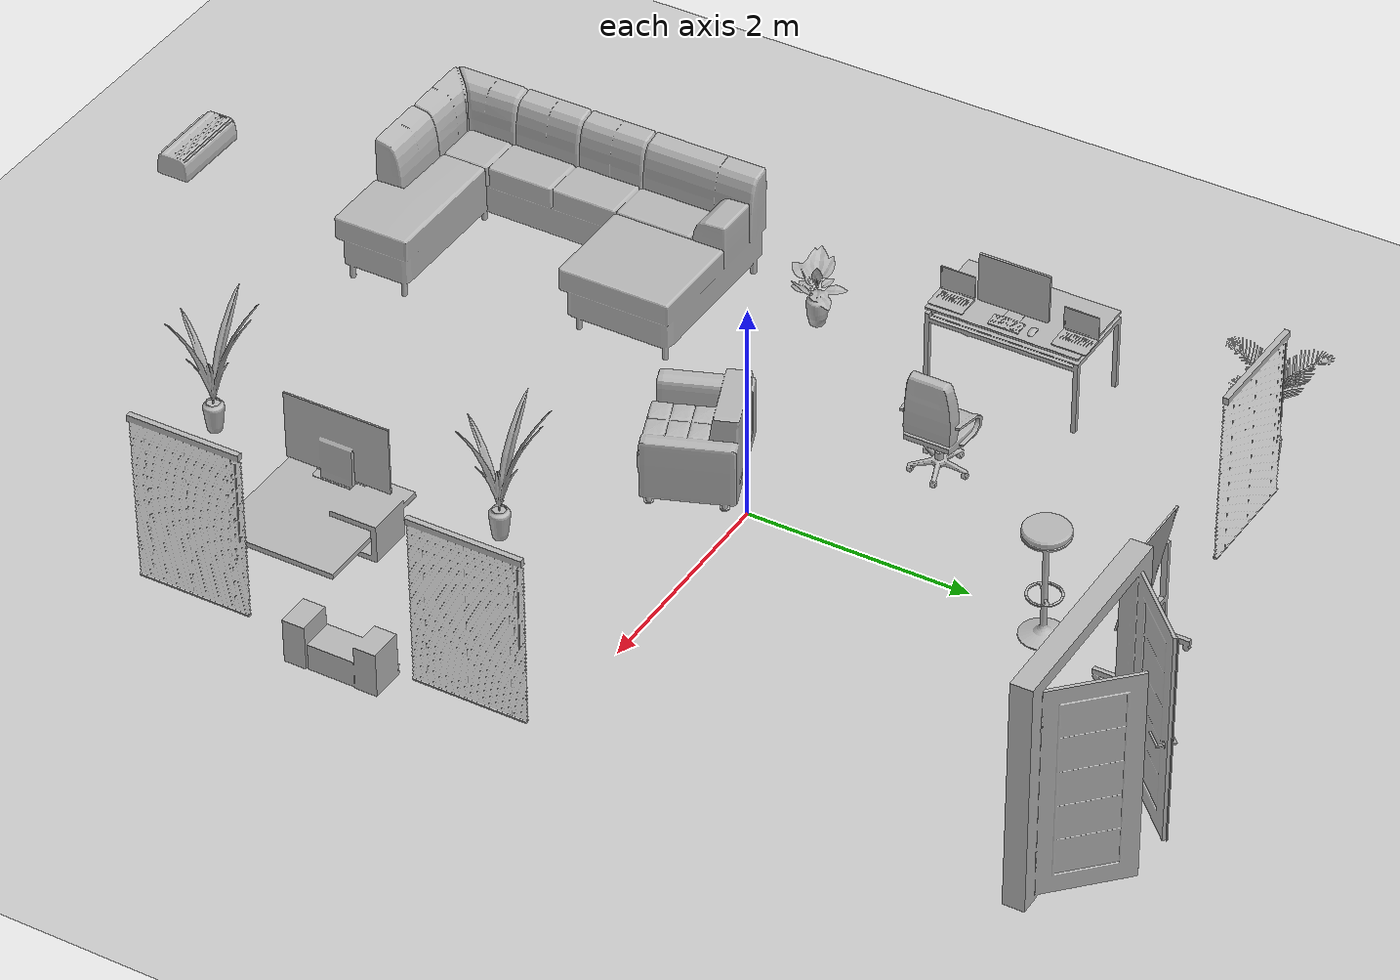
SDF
<sdf version="1.4">
 <world name="default">
  <light name="sun" type="directional">
   <pose>0 0 10 0 -0 0</pose>
   <diffuse>0.8 0.8 0.8 1</diffuse>
   <specular>0.2 0.2 0.2 1</specular>
   <attenuation>
    <range>1000</range>
    <constant>0.9</constant>
    <linear>0.01</linear>
    <quadratic>0.001</quadratic>
   </attenuation>
   <direction>-0.5 0.1 -0.9</direction>
  </light>
  <model name="ground_plane">
   <static>1</static>
   <link name="link">
    <collision name="collision">
     <geometry><plane><normal>0 0 1</normal><size>100 100</size></plane></geometry>
     <surface><friction><ode><mu>100</mu><mu2>50</mu2></ode></friction></surface>
    </collision>
    <visual name="visual">
     <cast_shadows>0</cast_shadows>
     <geometry><plane><normal>0 0 1</normal><size>100 100</size></plane></geometry>
     <material>
      <script><uri>file://media/materials/scripts/gazebo.material</uri><name>Gazebo/Grey</name></script>
     </material>
    </visual>
    <velocity_decay><linear>0</linear><angular>0</angular></velocity_decay>
   </link>
  </model>
  <physics type="ode">
   <max_step_size>0.001</max_step_size>
   <real_time_factor>1</real_time_factor>
   <real_time_update_rate>1000</real_time_update_rate>
   <gravity>0 0 -9.8</gravity>
  </physics>
  <scene><ambient>0.4 0.4 0.4 1</ambient><background>0.7 0.7 0.7 1</background><shadows>1</shadows></scene>
  <spherical_coordinates>
   <surface_model>EARTH_WGS84</surface_model>
   <latitude_deg>0</latitude_deg>
   <longitude_deg>0</longitude_deg>
   <elevation>0</elevation>
   <heading_deg>0</heading_deg>
  </spherical_coordinates>
  <model name="167_0">
   <pose>-1.88176 -2.98875 0.05 0 -0 0</pose>
   <static>1</static>
   <link name="link">
    <collision name="collision"><geometry><box><size>1.93296 3.03706 2</size></box></geometry></collision>
    <visual name="visual"><geometry><mesh><uri>model://167/167.dae</uri></mesh></geometry></visual>
    <velocity_decay><linear>0</linear><angular>0</angular></velocity_decay>
   </link>
  </model>
  <model name="169_0">
   <pose>-0.191575 -0.598152 0.05 0 0 -1.20124</pose>
   <static>1</static>
   <link name="link">
    <collision name="collision"><geometry><box><size>0.831232 1.00323 2</size></box></geometry></collision>
    <visual name="visual"><geometry><mesh><uri>model://169/169.dae</uri></mesh></geometry></visual>
    <velocity_decay><linear>0</linear><angular>0</angular></velocity_decay>
   </link>
  </model>
  <model name="586_0">
   <pose>1.85728 -2.80875 0.05 0 -0 0</pose>
   <static>1</static>
   <link name="link">
    <collision name="collision"><geometry><box><size>1.2 1.27 2</size></box></geometry></collision>
    <visual name="visual"><geometry><mesh><uri>model://586/586.dae</uri></mesh></geometry></visual>
    <velocity_decay><linear>0</linear><angular>0</angular></velocity_decay>
   </link>
  </model>
  <model name="112_0">
   <pose>1.44324 -2.92875 0.15 0 -0 3.14159</pose>
   <static>1</static>
   <link name="link">
    <collision name="collision"><geometry><box><size>0.099688 0.99 2</size></box></geometry></collision>
    <visual name="visual"><geometry><mesh><uri>model://112/112.dae</uri></mesh></geometry></visual>
    <velocity_decay><linear>0</linear><angular>0</angular></velocity_decay>
   </link>
  </model>
  <model name="747_0">
   <pose>-0.842282 3.94761 0.9 0 -0 1.54772</pose>
   <static>1</static>
   <link name="link">
    <collision name="collision"><geometry><box><size>0.05 1 2</size></box></geometry></collision>
    <visual name="visual"><geometry><mesh><uri>model://747/747.dae</uri></mesh></geometry></visual>
    <velocity_decay><linear>0</linear><angular>0</angular></velocity_decay>
   </link>
  </model>
  <model name="747_1">
   <pose>3.94429 -2.55675 0.9 0 -0 0</pose>
   <static>1</static>
   <link name="link">
    <collision name="collision"><geometry><box><size>0.05 1 2</size></box></geometry></collision>
    <visual name="visual"><geometry><mesh><uri>model://747/747.dae</uri></mesh></geometry></visual>
    <velocity_decay><linear>0</linear><angular>0</angular></velocity_decay>
   </link>
  </model>
  <model name="747_2">
   <pose>3.94037 -0.09675 0.9 0 -0 0</pose>
   <static>1</static>
   <link name="link">
    <collision name="collision"><geometry><box><size>0.05 1 2</size></box></geometry></collision>
    <visual name="visual"><geometry><mesh><uri>model://747/747.dae</uri></mesh></geometry></visual>
    <velocity_decay><linear>0</linear><angular>0</angular></velocity_decay>
   </link>
  </model>
  <model name="506_0">
   <pose>-2.54488 1.09125 0.05 0 -0 0</pose>
   <static>1</static>
   <link name="link">
    <collision name="collision"><geometry><box><size>0.75 1.40043 2</size></box></geometry></collision>
    <visual name="visual"><geometry><mesh><uri>model://506/506.dae</uri></mesh></geometry></visual>
    <velocity_decay><linear>0</linear><angular>0</angular></velocity_decay>
   </link>
  </model>
  <model name="120_0">
   <pose>-2.31996 0.551247 0.807648 0 -0 0</pose>
   <static>1</static>
   <link name="link">
    <collision name="collision"><geometry><box><size>0.225973 0.32 2</size></box></geometry></collision>
    <visual name="visual"><geometry><mesh><uri>model://120/120.dae</uri></mesh></geometry></visual>
    <velocity_decay><linear>0</linear><angular>0</angular></velocity_decay>
   </link>
  </model>
  <model name="120_1">
   <pose>-2.33183 1.67503 0.809475 0 -0 0</pose>
   <static>1</static>
   <link name="link">
    <collision name="collision"><geometry><box><size>0.225973 0.32 2</size></box></geometry></collision>
    <visual name="visual"><geometry><mesh><uri>model://120/120.dae</uri></mesh></geometry></visual>
    <velocity_decay><linear>0</linear><angular>0</angular></velocity_decay>
   </link>
  </model>
  <model name="189_0">
   <pose>-2.39942 1.07925 0.802224 0 -0 0</pose>
   <static>1</static>
   <link name="link">
    <collision name="collision"><geometry><box><size>0.359507 0.6495 2</size></box></geometry></collision>
    <visual name="visual"><geometry><mesh><uri>model://189/189.dae</uri></mesh></geometry></visual>
    <velocity_decay><linear>0</linear><angular>0</angular></velocity_decay>
   </link>
  </model>
  <model name="106_0">
   <pose>-1.23967 1.06725 0.05 0 -0 0</pose>
   <static>1</static>
   <link name="link">
    <collision name="collision"><geometry><box><size>0.550393 0.596196 2</size></box></geometry></collision>
    <visual name="visual"><geometry><mesh><uri>model://106/106.dae</uri></mesh></geometry></visual>
    <velocity_decay><linear>0</linear><angular>0</angular></velocity_decay>
   </link>
  </model>
  <model name="130_0">
   <pose>-2.41567 -0.744751 0.05 0 -0 0</pose>
   <static>1</static>
   <link name="link">
    <collision name="collision"><geometry><box><size>0.51716 0.566834 2</size></box></geometry></collision>
    <visual name="visual"><geometry><mesh><uri>model://130/130.dae</uri></mesh></geometry></visual>
    <velocity_decay><linear>0</linear><angular>0</angular></velocity_decay>
   </link>
  </model>
  <model name="620_0">
   <pose>-2.55801 3.31145 0.05 0 -0 0</pose>
   <static>1</static>
   <link name="link">
    <collision name="collision"><geometry><box><size>0.999657 0.770188 2</size></box></geometry></collision>
    <visual name="visual"><geometry><mesh><uri>model://620/620.dae</uri></mesh></geometry></visual>
    <velocity_decay><linear>0</linear><angular>0</angular></velocity_decay>
   </link>
  </model>
  <model name="237_0">
   <pose>1.29233 -1.51275 0.05 0 -0 0</pose>
   <static>1</static>
   <link name="link">
    <collision name="collision"><geometry><box><size>0.839248 0.825384 2</size></box></geometry></collision>
    <visual name="visual"><geometry><mesh><uri>model://237/237.dae</uri></mesh></geometry></visual>
    <velocity_decay><linear>0</linear><angular>0</angular></velocity_decay>
   </link>
  </model>
  <model name="237_1">
   <pose>1.28033 -4.23675 0.05 0 -0 0</pose>
   <static>1</static>
   <link name="link">
    <collision name="collision"><geometry><box><size>0.839248 0.825384 2</size></box></geometry></collision>
    <visual name="visual"><geometry><mesh><uri>model://237/237.dae</uri></mesh></geometry></visual>
    <velocity_decay><linear>0</linear><angular>0</angular></velocity_decay>
   </link>
  </model>
  <model name="518_0">
   <pose>0.140324 3.58725 0.05 0 0 -1.5708</pose>
   <static>1</static>
   <link name="link">
    <collision name="collision"><geometry><box><size>0.5 0.7 2</size></box></geometry></collision>
    <visual name="visual"><geometry><mesh><uri>model://518/518.dae</uri></mesh></geometry></visual>
    <velocity_decay><linear>0</linear><angular>0</angular></velocity_decay>
   </link>
  </model>
  <model name="88_0">
   <pose>0.200328 2.75925 0.05 0 0 -2.35619</pose>
   <static>1</static>
   <link name="link">
    <collision name="collision"><geometry><box><size>0.40365 0.40365 2</size></box></geometry></collision>
    <visual name="visual"><geometry><mesh><uri>model://88/88.dae</uri></mesh></geometry></visual>
    <velocity_decay><linear>0</linear><angular>0</angular></velocity_decay>
   </link>
  </model>
  <model name="218_0">
   <pose>3.65078 -1.44075 0.45 0 0 -3.14159</pose>
   <static>1</static>
   <link name="link">
    <collision name="collision"><geometry><box><size>0.318 0.84 2</size></box></geometry></collision>
    <visual name="visual"><geometry><mesh><uri>model://218/218.dae</uri></mesh></geometry></visual>
    <velocity_decay><linear>0</linear><angular>0</angular></velocity_decay>
   </link>
  </model>
  <model name="133_0">
   <pose>2.10012 4.02362 0.02 0 0 -1.56483</pose>
   <static>1</static>
   <link name="link">
    <collision name="collision"><geometry><box><size>0.769999 1.9 2</size></box></geometry></collision>
    <visual name="visual"><geometry><mesh><uri>model://133/133.dae</uri></mesh></geometry></visual>
    <velocity_decay><linear>0</linear><angular>0</angular></velocity_decay>
   </link>
  </model>
  <model name="225_0">
   <pose>0.476327 -4.80625 2.05 0 0 -1.5708</pose>
   <static>1</static>
   <link name="link">
    <collision name="collision"><geometry><box><size>0.31 0.710003 2</size></box></geometry></collision>
    <visual name="visual"><geometry><mesh><uri>model://225/225.dae</uri></mesh></geometry></visual>
    <velocity_decay><linear>0</linear><angular>0</angular></velocity_decay>
   </link>
  </model>
 </world>
</sdf>
